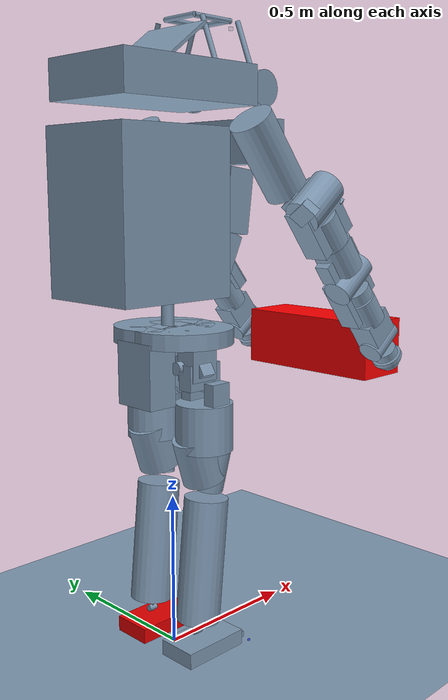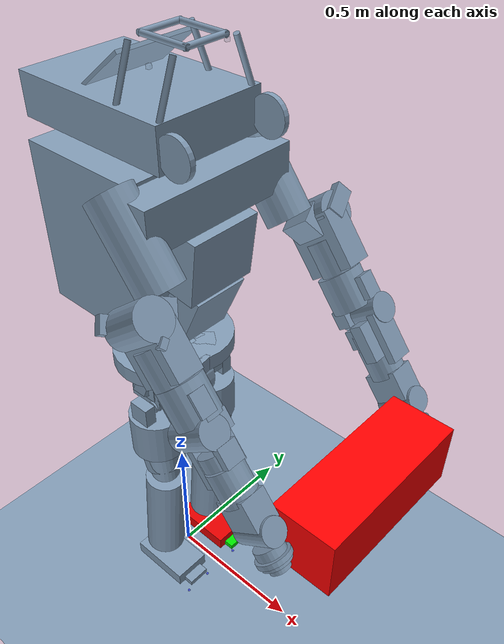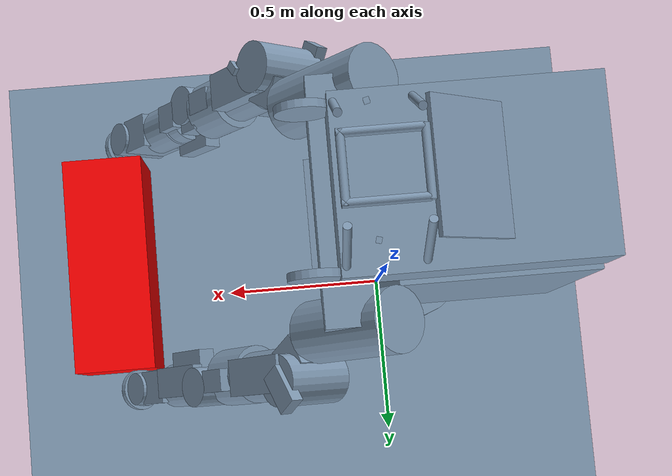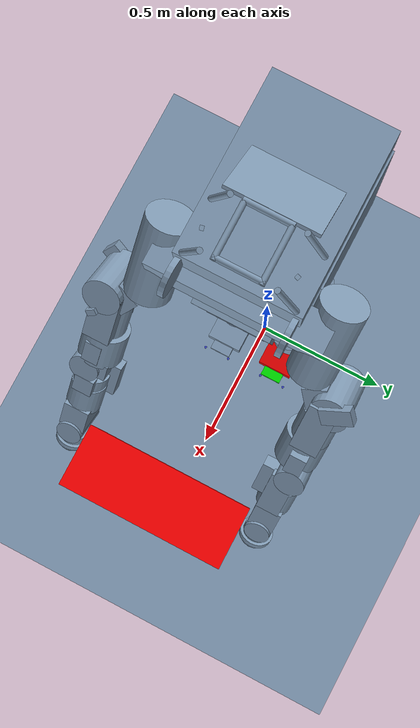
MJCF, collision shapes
<mujoco model="Atlas">
  <compiler coordinate="local" angle="radian"/>
  <option timestep="0.001" integrator="RK4" solver="Newton" iterations="50"/>
  <size njmax="1000" nuserdata="600000"/>
  <visual>
    <map fogstart="2" fogend="4"/>
  </visual>
  <default>
    <default class="/">
      <joint type="hinge" pos="0 0 0" limited="true" armature="0.01" damping="0"/>
      <geom contype="0" conaffinity="1" group="0" rgba="0.5 0.59999999999999998 0.69999999999999996 0.20000000000000001" friction="1 0.10000000000000001 0.10000000000000001" margin="0.001"/>
      <site type="sphere" size="0.0050000000000000001"/>
      <motor ctrllimited="true" ctrlrange="-0.94999999999999996 0.94999999999999996"/>
      <default class="viz">
        <geom type="mesh" contype="0" conaffinity="0" group="1" rgba="0.59999999999999998 0.59999999999999998 0.69999999999999996 1"/>
      </default>
      <default class="ground">
        <geom type="mesh" contype="0" conaffinity="0" group="2" rgba="0.5 0.59999999999999998 0.69999999999999996 1"/>
      </default>
    </default>
  </default>
  <asset>
    <mesh name="pelvis" class="/" file="pelvis-5f9678148bf878cbf40b1b0634df740cc1d6a4bb.stl"/>
    <mesh name="ltorso" class="/" file="ltorso-2367c17720f90b2056e16418954efe300793b26b.stl"/>
    <mesh name="mtorso" class="/" file="mtorso-86c815a02087f294f3ac3eba6776548a54aef9e0.stl"/>
    <mesh name="utorso" class="/" file="utorso-1db5a9392452b46f428cdb81b148020f20e70023.stl"/>
    <mesh name="r_clav" class="/" file="r_clav-a01ba4107edb3eb079c054fa1404a711dda4e919.stl"/>
    <mesh name="r_scap" class="/" file="r_scap-98ad3774b4ba85864a138c77eb0930e559a80ef2.stl"/>
    <mesh name="r_uarm" class="/" file="r_uarm-dc181b79e87e264a3c390287429238d6f9d54f6d.stl"/>
    <mesh name="r_larm" class="/" file="r_larm-b69c61a76084eb7d6ccd145204017043053099be.stl"/>
    <mesh name="r_farm" class="/" file="r_farm-c98051186eda0f3c83a409898f82b4a7ece23153.stl"/>
    <mesh name="r_hand" class="/" file="r_hand-c9674ebcb3fc6d9f7e10be3cdf8905e8a1e597e7.stl"/>
    <mesh name="l_uglut" class="/" file="l_uglut-d5b34759587c29028eb76cd2d07dfec6605078e5.stl"/>
    <mesh name="l_lglut" class="/" file="l_lglut-490210c9e73fa2e4d8cf96b92d170d712dedbd59.stl"/>
    <mesh name="l_uleg" class="/" file="l_uleg-10864b479919b2657634b3262465bee9de5fc57f.stl"/>
    <mesh name="l_lleg" class="/" file="l_lleg-443b5527d6a6233434f379e3d1fd72ba54238e53.stl"/>
    <mesh name="l_talus" class="/" file="l_talus-b99aa12bda94a37326d3379e26da05b84f76fb3f.stl"/>
    <mesh name="l_foot" class="/" file="l_foot-c04a60cf2d067f5a62a12d139db7dddd028134af.stl"/>
    <mesh name="r_uglut" class="/" file="r_uglut-524a6d980386139b5592d0871e762dd87583c5ce.stl"/>
    <mesh name="r_lglut" class="/" file="r_lglut-35e2b1fd1b2a0b474434c7c8915b64f4b2eed62f.stl"/>
    <mesh name="r_uleg" class="/" file="r_uleg-a0e24653034c791dcc8c308dde62a47165aab08d.stl"/>
    <mesh name="r_lleg" class="/" file="r_lleg-3d60b9efb9c50b2a4066c67d30479ffd6656535f.stl"/>
    <mesh name="r_talus" class="/" file="r_talus-eaed3652f60a9594873cb9746b82f7ef312b5d42.stl"/>
    <mesh name="r_foot" class="/" file="r_foot-3119f8fce4f6232ab0546ddbc38dd423e105679d.stl"/>
    <texture name="groundplane" type="2d" builtin="checker" rgb1="0.40000000000000002 0.40000000000000002 0.40000000000000002" rgb2="0.59999999999999998 0.59999999999999998 0.59999999999999998" width="1000" height="1000"/>
    <material name="MatGnd" class="/" texture="groundplane" texrepeat="100 100" specular="1" shininess="1" reflectance="0.5"/>
  </asset>
  <worldbody>
    <geom name="ground" class="ground" type="plane" contype="1" conaffinity="1" size="50 50 1" material="MatGnd" friction="1 0.10000000000000001 0.10000000000000001" pos="0 0 0"/>
    <light name="//unnamed_light_0" class="/" directional="true" pos="0 0 1.3" dir="-0 0 -1.3" cutoff="100" exponent="1" diffuse="1 1 1" specular="0.10000000000000001 0.10000000000000001 0.10000000000000001"/>
    <body name="pelvis" pos="0 0 0.93999999999999995">
      <inertial pos="0.0111 0 0.027099999999999999" quat="0.69858399999999998 0.71391400000000005 0.042483699999999999 -0.022409200000000001" mass="9.5090000000000003" diaginertia="0.124488 0.116646 0.095766599999999993"/>
      <camera name="track" class="/" mode="trackcom" pos="0 -4 0" xyaxes="1 0 0 0 0 1"/>
      <geom name="//unnamed_geom_1" class="viz" mesh="pelvis"/>
      <geom name="//unnamed_geom_2" class="/" type="cylinder" size="0.11 0.029999999999999999" pos="0.045999999999999999 0 0.01" quat="0.70710700000000004 0.70710700000000004 0 0"/>
      <geom name="//unnamed_geom_3" class="/" type="cylinder" size="0.11 0.029999999999999999" pos="-0.029999999999999999 0 0.01" quat="0.70710700000000004 0.70710700000000004 0 0"/>
      <geom name="//unnamed_geom_4" class="/" type="cylinder" size="0.16 0.025000000000000001" pos="0.01 0.042000000000000003 0.089999999999999997"/>
      <geom name="//unnamed_geom_5" class="/" type="cylinder" size="0.16 0.025000000000000001" pos="0.01 -0.042000000000000003 0.089999999999999997"/>
      <geom name="//unnamed_geom_6" class="/" type="box" size="0.050000000000000003 0.074999999999999997 0.10000000000000001" pos="-0.10000000000000001 0 -0.02"/>
      <joint name="pelvis_tx" class="/" type="slide" pos="0 0 0" axis="1 0 0" limited="false" stiffness="0" range="-500 500" ref="0" armature="0" damping="0"/>
      <joint name="pelvis_tz" class="/" type="slide" pos="0 0 0" axis="0 1 0" limited="false" stiffness="0" range="-300 300" ref="0" armature="0" damping="0"/>
      <joint name="pelvis_ty" class="/" type="slide" pos="0 0 0" axis="0 0 1" limited="false" stiffness="0" range="-100 200" ref="0" armature="0" damping="0"/>
      <joint name="pelvis_tilt" class="/" type="hinge" pos="0 0 0" axis="0 -1 0" limited="false" stiffness="0" range="-1.5708 1.5708" ref="0" armature="0" damping="0"/>
      <joint name="pelvis_list" class="/" type="hinge" pos="0 0 0" axis="1 0 0" limited="false" stiffness="0" range="-1.5708 1.5708" ref="0" armature="0" damping="0"/>
      <joint name="pelvis_rotation" class="/" type="hinge" pos="0 0 0" axis="0 0 1" limited="false" stiffness="0" range="-1.5708 1.5708" ref="0" armature="0" damping="0"/>
      <body name="ltorso" pos="-0.012500000000000001 0 0">
        <inertial pos="-0.0112984 -3.1536600000000001e-06 0.0746835" quat="0.99707100000000004 0.000128212 0.076484999999999997 -0.00012406" mass="2.27" diaginertia="0.0039620000000000002 0.0034169399999999998 0.0016921200000000001"/>
        <joint name="back_bkz" class="/" axis="0 0 1" range="-0.66322499999999995 0.66322499999999995"/>
        <geom name="//unnamed_geom_7" class="viz" mesh="ltorso"/>
        <body name="mtorso" pos="0 0 0.16200000000000001">
          <inertial pos="-0.0081626600000000004 -0.013124500000000001 0.0305974" quat="0.108378 0.49314000000000002 0.74633499999999997 0.43364799999999998" mass="0.79900000000000004" diaginertia="0.00053624300000000005 0.00048737800000000001 0.000358057"/>
          <joint name="back_bky" class="/" axis="0 1 0" range="-0.219388 0.53878300000000001"/>
          <geom name="//unnamed_geom_8" class="viz" mesh="mtorso"/>
          <geom name="//unnamed_geom_9" class="/" type="cylinder" size="0.02 0.074999999999999997" pos="0 0 -0.02"/>
          <body name="utorso" pos="0 0 0.050000000000000003">
            <inertial pos="-0.062199999999999998 0.0023 0.31569999999999998" quat="0.45060099999999997 -0.034127699999999997 -0.043951799999999999 0.89098999999999995" mass="84.409000000000006" diaginertia="1.62425 1.5672999999999999 0.55244300000000002"/>
            <joint name="back_bkx" class="/" axis="1 0 0" range="-0.52359900000000004 0.52359900000000004"/>
            <geom name="//unnamed_geom_10" class="viz" mesh="utorso"/>
            <geom name="//unnamed_geom_11" class="/" type="box" size="0.20000000000000001 0.17499999999999999 0.25" pos="-0.10199999999999999 0 0.25"/>
            <geom name="//unnamed_geom_12" class="/" type="box" size="0.065000000000000002 0.25 0.050000000000000003" pos="0.20000000000000001 0 0.46000000000000002" quat="0.70714100000000002 0 0.70707299999999995 0"/>
            <geom name="//unnamed_geom_13" class="/" type="box" size="0.10000000000000001 0.115 0.050000000000000003" pos="0.20000000000000001 0 0.28499999999999998" quat="0.65998299999999999 0 0.75127999999999995 0"/>
            <geom name="//unnamed_geom_14" class="/" type="box" size="0.10000000000000001 0.089999999999999997 0.050000000000000003" pos="0.14999999999999999 0 0.10000000000000001" quat="0.54030199999999995 0 0.84147099999999997 0"/>
            <geom name="//unnamed_geom_15" class="/" type="box" size="0.25315300000000002 0.17086000000000001 0.059999999999999998" pos="-0.035000000000000003 0 0.62649999999999995"/>
            <geom name="//unnamed_geom_16" class="/" type="cylinder" size="0.0080000000000000002 0.065000000000000002" pos="0.20799999999999999 0 0.82150000000000001" quat="0.70714100000000002 0.70707299999999995 0 0"/>
            <geom name="//unnamed_geom_17" class="/" type="cylinder" size="0.0080000000000000002 0.074999999999999997" pos="0.20799999999999999 -0.125 0.745" quat="0.98149600000000004 -0.19148499999999999 0 0"/>
            <geom name="//unnamed_geom_18" class="/" type="cylinder" size="0.0080000000000000002 0.074999999999999997" pos="0.20799999999999999 0.125 0.745" quat="0.98149600000000004 0.19148499999999999 0 0"/>
            <geom name="//unnamed_geom_19" class="/" type="cylinder" size="0.0080000000000000002 0.074999999999999997" pos="0.063 -0.125 0.745" quat="0.98149600000000004 -0.19148499999999999 0 0"/>
            <geom name="//unnamed_geom_20" class="/" type="cylinder" size="0.0080000000000000002 0.074999999999999997" pos="0.063 0.125 0.745" quat="0.98149600000000004 0.19148499999999999 0 0"/>
            <geom name="//unnamed_geom_21" class="/" type="cylinder" size="0.0080000000000000002 0.074999999999999997" pos="0.14000000000000001 0.059999999999999998 0.82150000000000001" quat="0.50004800000000005 0.5 0.49995200000000001 0.5"/>
            <geom name="//unnamed_geom_22" class="/" type="cylinder" size="0.0080000000000000002 0.074999999999999997" pos="0.14000000000000001 -0.059999999999999998 0.82150000000000001" quat="0.50004800000000005 0.5 0.49995200000000001 0.5"/>
            <geom name="//unnamed_geom_23" class="/" type="box" size="0.10000000000000001 0.125 0.0050000000000000001" pos="-0.029000000000000001 0 0.73099999999999998" quat="0.94765100000000002 0 -0.31930900000000001 0"/>
            <geom name="//unnamed_geom_24" class="/" type="cylinder" size="0.0080000000000000002 0.065000000000000002" pos="0.063 0 0.82150000000000001" quat="0.70714100000000002 0.70707299999999995 0 0"/>
            <geom name="//unnamed_geom_25" class="/" type="cylinder" size="0.055 0.0080000000000000002" pos="0.26100000000000001 0.156 0.62150000000000005" quat="0.70714100000000002 0.70707299999999995 0 0"/>
            <geom name="//unnamed_geom_26" class="/" type="cylinder" size="0.055 0.0080000000000000002" pos="0.26100000000000001 -0.156 0.62150000000000005" quat="0.70714100000000002 0.70707299999999995 0 0"/>
            <body name="l_clav" pos="0.1406 0.22559999999999999 0.47760000000000002" quat="0 -0.34999999999999998 0 1">
              <inertial pos="0 0 -0.084000000000000005" quat="0.68458799999999997 0.17702899999999999 -0.17702899999999999 0.68458799999999997" mass="4.4660000000000002" diaginertia="0.011217 0.010999999999999999 0.00178301"/>
              <joint name="l_arm_shz" class="/" axis="0 0 1" range="-1.5708 0.78539800000000004"/>
              <geom name="//unnamed_geom_27" class="viz" mesh="r_clav"/>
              <geom name="//unnamed_geom_28" class="/" type="cylinder" size="0.055500000000000001 0.076249999999999998" pos="0 -0.11 -0.248" quat="0.70710700000000004 0 0.70710700000000004 0"/>
              <geom name="//unnamed_geom_29" class="/" type="cylinder" size="0.067000000000000004 0.13" pos="0.0050000000000000001 -0.014999999999999999 -0.080000000000000002"/>
              <geom name="//unnamed_geom_30" class="/" type="box" size="0.050000000000000003 0.035000000000000003 0.035999999999999997" pos="0.0040000000000000001 -0.064000000000000001 -0.247" quat="0.86532399999999998 0.50121300000000002 0 0"/>
              <body name="l_scap" pos="0 -0.11 -0.245" axisangle="1 0 0 1.5708">
                <inertial pos="0 0 0" quat="0.5 0.5 0.5 0.5" mass="3.899" diaginertia="0.0058300000000000001 0.0058300000000000001 0.0031900000000000001"/>
                <joint name="l_arm_shx" class="/" axis="-1 0 0" range="-1.5708 1.5708"/>
                <geom name="//unnamed_geom_31" class="viz" mesh="r_scap"/>
                <geom name="//unnamed_geom_32" class="/" type="cylinder" size="0.057000000000000002 0.052499999999999998" pos="-0.0050000000000000001 -0.115 -0.014" quat="0.70710700000000004 0.70710700000000004 0 0"/>
                <geom name="//unnamed_geom_33" class="/" type="box" size="0.080000000000000002 0.085000000000000006 0.040000000000000001" pos="-0.0050000000000000001 -0.074999999999999997 -0.014999999999999999"/>
                <geom name="//unnamed_geom_34" class="/" type="box" size="0.01 0.014500000000000001 0.0089999999999999993" pos="0.075999999999999998 -0.061499999999999999 0.012800000000000001" quat="0.43117699999999998 0.90226799999999996 0 0"/>
                <geom name="//unnamed_geom_35" class="/" type="box" size="0.014 0.044999999999999998 0.025000000000000001" pos="-0.074999999999999997 0.014999999999999999 0.019" quat="0.877583 0.47942600000000002 0 0"/>
                <body name="l_uarm" pos="0 -0.187 -0.016">
                  <inertial pos="0 0.065000000000000002 0" quat="0.70710700000000004 0.70710700000000004 0 0" mass="4.3860000000000001" diaginertia="0.0065599999999999999 0.0065599999999999999 0.0035799999999999998"/>
                  <joint name="l_arm_ely" class="/" axis="0 -1 0" range="0 3.1415899999999999"/>
                  <geom name="//unnamed_geom_36" class="viz" mesh="r_uarm"/>
                  <geom name="//unnamed_geom_37" class="/" type="cylinder" size="0.065000000000000002 0.055" pos="0 -0.035000000000000003 -0.0050000000000000001" quat="0.70710499999999998 0.70710799999999996 0 0"/>
                  <geom name="//unnamed_geom_38" class="/" type="box" size="0.025000000000000001 0.035000000000000003 0.074999999999999997" pos="-0.01 -0.042999999999999997 0.002" quat="0.70710700000000004 0 0.70710700000000004 0"/>
                  <body name="l_larm" pos="0 -0.11899999999999999 0.0091999999999999998">
                    <inertial pos="0 0 0" quat="0.5 0.5 0.5 0.5" mass="3.2480000000000002" diaginertia="0.0044600000000000004 0.0044600000000000004 0.00265"/>
                    <joint name="l_arm_elx" class="/" axis="-1 0 0" range="0 2.3561899999999998"/>
                    <geom name="//unnamed_geom_39" class="viz" mesh="r_larm"/>
                    <geom name="//unnamed_geom_40" class="/" type="cylinder" size="0.050999999999999997 0.02" pos="0 -0.074999999999999997 -0.01" quat="0.70710700000000004 -0.70710700000000004 0 0"/>
                    <geom name="//unnamed_geom_41" class="/" type="cylinder" size="0.044999999999999998 0.073499999999999996" pos="-0.012 0 0.0025000000000000001" quat="0.70710700000000004 0 0.70710700000000004 0"/>
                    <geom name="//unnamed_geom_42" class="/" type="box" size="0.012500000000000001 0.077499999999999999 0.035000000000000003" pos="-0.070000000000000007 -0.076999999999999999 -0.014999999999999999"/>
                    <geom name="//unnamed_geom_43" class="/" type="box" size="0.012500000000000001 0.029999999999999999 0.029999999999999999" pos="0.050000000000000003 -0.067000000000000004 -0.0089999999999999993"/>
                    <geom name="//unnamed_geom_44" class="/" type="box" size="0.02 0.057500000000000002 0.025000000000000001" pos="-0.032000000000000001 -0.070999999999999994 -0.059999999999999998"/>
                    <geom name="//unnamed_geom_45" class="/" type="box" size="0.022499999999999999 0.0275 0.0115" pos="0.029999999999999999 0.01 -0.050000000000000003"/>
                    <body name="l_ufarm" pos="0 -0.29954999999999998 -0.0092099999999999994" quat="0 0 1 0">
                      <inertial pos="0.00014999999999999999 0.082960000000000006 0.00036999999999999999" quat="0.70710700000000004 0.70710700000000004 0 0" mass="2.4798" diaginertia="0.012730999999999999 0.011948 0.0028570000000000002"/>
                      <joint name="l_arm_wry" class="/" axis="0 -1 0" range="-3.0110000000000001 3.0110000000000001"/>
                      <geom name="//unnamed_geom_46" class="viz" mesh="r_farm"/>
                      <geom name="//unnamed_geom_47" class="/" type="cylinder" size="0.052999999999999999 0.050000000000000003" pos="0 0.14999999999999999 0" quat="0.70738800000000002 0.70682500000000004 0 0"/>
                      <geom name="//unnamed_geom_48" class="/" type="box" size="0.040000000000000001 0.044999999999999998 0.055" pos="-0.001 0.070000000000000007 0" quat="0.70710700000000004 0 0.70710700000000004 0"/>
                      <geom name="//unnamed_geom_49" class="/" type="cylinder" size="0.040000000000000001 0.0625" pos="0 0.0050000000000000001 0" quat="0.70738800000000002 0 0.70682500000000004 0"/>
                      <body name="l_lfarm" pos="0 0 0">
                        <inertial pos="0.00017000000000000001 -0.025149999999999999 0.0016299999999999999" quat="0.5 0.5 -0.5 0.5" mass="0.64800000000000002" diaginertia="0.000825 0.00076400000000000003 0.00042900000000000002"/>
                        <joint name="l_arm_wrx" class="/" axis="1 0 0" range="-1.7627999999999999 1.7627999999999999"/>
                        <geom name="//unnamed_geom_50" class="viz" mesh="r_hand"/>
                        <geom name="//unnamed_geom_51" class="/" type="cylinder" size="0.031 0.01" pos="0 -0.104 0" quat="0.70710700000000004 0.70710700000000004 0 0"/>
                        <geom name="//unnamed_geom_52" class="/" type="cylinder" size="0.044999999999999998 0.0074999999999999997" pos="0 -0.086999999999999994 0" quat="0.70710700000000004 0.70710700000000004 0 0"/>
                        <geom name="//unnamed_geom_53" class="/" type="cylinder" size="0.051999999999999998 0.0074999999999999997" pos="0 -0.074999999999999997 0" quat="0.70710700000000004 0.70710700000000004 0 0"/>
                        <geom name="//unnamed_geom_54" class="/" type="cylinder" size="0.042999999999999997 0.0135" pos="0 -0.051999999999999998 0" quat="0.70710700000000004 0.70710700000000004 0 0"/>
                        <body name="l_hand" pos="0 0 0" quat="0 0 1 0">
                          <inertial pos="0.00016000000000000001 -0.081589999999999996 2.0000000000000002e-05" quat="0.70710700000000004 0 0 0.70710700000000004" mass="0.58389999999999997" diaginertia="0.00047699999999999999 0.000388 0.000379"/>
                          <joint name="l_arm_wry2" class="/" axis="0 1 0" range="-2.9670999999999998 2.9670999999999998"/>
                        </body>
                      </body>
                    </body>
                  </body>
                </body>
              </body>
            </body>
            <body name="r_clav" pos="0.1406 -0.22559999999999999 0.47760000000000002" quat="1 0 -0.34999999999999998 0">
              <inertial pos="0 0 -0.084000000000000005" quat="0.68458799999999997 0.17702899999999999 -0.17702899999999999 0.68458799999999997" mass="4.4660000000000002" diaginertia="0.011217 0.010999999999999999 0.00178301"/>
              <joint name="r_arm_shz" class="/" axis="0 0 1" range="-0.78539800000000004 1.5708"/>
              <geom name="//unnamed_geom_55" class="viz" mesh="r_clav"/>
              <geom name="//unnamed_geom_56" class="/" type="cylinder" size="0.055500000000000001 0.076249999999999998" pos="0 -0.11 -0.248" quat="0.70710700000000004 0 0.70710700000000004 0"/>
              <geom name="//unnamed_geom_57" class="/" type="cylinder" size="0.067000000000000004 0.13" pos="0.0050000000000000001 -0.014999999999999999 -0.080000000000000002"/>
              <geom name="//unnamed_geom_58" class="/" type="box" size="0.050000000000000003 0.035000000000000003 0.035999999999999997" pos="0.0040000000000000001 -0.064000000000000001 -0.247" quat="0.86532399999999998 0.50121300000000002 0 0"/>
              <body name="r_scap" pos="0 -0.11 -0.245" axisangle="1 0 0 1.5708">
                <inertial pos="0 0 0" quat="0.5 0.5 0.5 0.5" mass="3.899" diaginertia="0.0058300000000000001 0.0058300000000000001 0.0031900000000000001"/>
                <joint name="r_arm_shx" class="/" axis="1 0 0" range="-1.5708 1.5708"/>
                <geom name="//unnamed_geom_59" class="viz" mesh="r_scap"/>
                <geom name="//unnamed_geom_60" class="/" type="cylinder" size="0.057000000000000002 0.052499999999999998" pos="-0.0050000000000000001 -0.115 -0.014" quat="0.70710700000000004 0.70710700000000004 0 0"/>
                <geom name="//unnamed_geom_61" class="/" type="box" size="0.080000000000000002 0.085000000000000006 0.040000000000000001" pos="-0.0050000000000000001 -0.074999999999999997 -0.014999999999999999"/>
                <geom name="//unnamed_geom_62" class="/" type="box" size="0.01 0.014500000000000001 0.0089999999999999993" pos="0.075999999999999998 -0.061499999999999999 0.012800000000000001" quat="0.43117699999999998 0.90226799999999996 0 0"/>
                <geom name="//unnamed_geom_63" class="/" type="box" size="0.014 0.044999999999999998 0.025000000000000001" pos="-0.074999999999999997 0.014999999999999999 0.019" quat="0.877583 0.47942600000000002 0 0"/>
                <body name="r_uarm" pos="0 -0.187 -0.016">
                  <inertial pos="0 0.065000000000000002 0" quat="0.70710700000000004 0.70710700000000004 0 0" mass="4.3860000000000001" diaginertia="0.0065599999999999999 0.0065599999999999999 0.0035799999999999998"/>
                  <joint name="r_arm_ely" class="/" axis="0 1 0" range="0 3.1415899999999999"/>
                  <geom name="//unnamed_geom_64" class="viz" mesh="r_uarm"/>
                  <geom name="//unnamed_geom_65" class="/" type="cylinder" size="0.065000000000000002 0.055" pos="0 -0.035000000000000003 -0.0050000000000000001" quat="0.70710499999999998 0.70710799999999996 0 0"/>
                  <geom name="//unnamed_geom_66" class="/" type="box" size="0.025000000000000001 0.035000000000000003 0.074999999999999997" pos="-0.01 -0.042999999999999997 0.002" quat="0.70710700000000004 0 0.70710700000000004 0"/>
                  <body name="r_larm" pos="0 -0.11899999999999999 0.0091999999999999998">
                    <inertial pos="0 0 0" quat="0.5 0.5 0.5 0.5" mass="3.2480000000000002" diaginertia="0.0044600000000000004 0.0044600000000000004 0.00265"/>
                    <joint name="r_arm_elx" class="/" axis="1 0 0" range="-2.3561899999999998 0"/>
                    <geom name="//unnamed_geom_67" class="viz" mesh="r_larm"/>
                    <geom name="//unnamed_geom_68" class="/" type="cylinder" size="0.050999999999999997 0.02" pos="0 -0.074999999999999997 -0.01" quat="0.70710700000000004 -0.70710700000000004 0 0"/>
                    <geom name="//unnamed_geom_69" class="/" type="cylinder" size="0.044999999999999998 0.073499999999999996" pos="-0.012 0 0.0025000000000000001" quat="0.70710700000000004 0 0.70710700000000004 0"/>
                    <geom name="//unnamed_geom_70" class="/" type="box" size="0.012500000000000001 0.077499999999999999 0.035000000000000003" pos="-0.070000000000000007 -0.076999999999999999 -0.014999999999999999"/>
                    <geom name="//unnamed_geom_71" class="/" type="box" size="0.012500000000000001 0.029999999999999999 0.029999999999999999" pos="0.050000000000000003 -0.067000000000000004 -0.0089999999999999993"/>
                    <geom name="//unnamed_geom_72" class="/" type="box" size="0.02 0.057500000000000002 0.025000000000000001" pos="-0.032000000000000001 -0.070999999999999994 -0.059999999999999998"/>
                    <geom name="//unnamed_geom_73" class="/" type="box" size="0.022499999999999999 0.0275 0.0115" pos="0.029999999999999999 0.01 -0.050000000000000003"/>
                    <body name="r_ufarm" pos="0 -0.29954999999999998 -0.0092099999999999994">
                      <inertial pos="0.00014999999999999999 0.082960000000000006 0.00036999999999999999" quat="0.70710700000000004 0.70710700000000004 0 0" mass="2.4798" diaginertia="0.012730999999999999 0.011948 0.0028570000000000002"/>
                      <joint name="r_arm_wry" class="/" axis="0 1 0" range="-3.0110000000000001 3.0110000000000001"/>
                      <geom name="//unnamed_geom_74" class="viz" mesh="r_farm"/>
                      <geom name="//unnamed_geom_75" class="/" type="cylinder" size="0.052999999999999999 0.050000000000000003" pos="0 0.14999999999999999 0" quat="0.70738800000000002 0.70682500000000004 0 0"/>
                      <geom name="//unnamed_geom_76" class="/" type="box" size="0.040000000000000001 0.044999999999999998 0.055" pos="-0.001 0.070000000000000007 0" quat="0.70710700000000004 0 0.70710700000000004 0"/>
                      <geom name="//unnamed_geom_77" class="/" type="cylinder" size="0.040000000000000001 0.0625" pos="0 0.0050000000000000001 0" quat="0.70738800000000002 0 0.70682500000000004 0"/>
                      <body name="r_lfarm" pos="0 0 0">
                        <inertial pos="0.00017000000000000001 -0.025149999999999999 0.0016299999999999999" quat="0.5 0.5 -0.5 0.5" mass="0.64800000000000002" diaginertia="0.000825 0.00076400000000000003 0.00042900000000000002"/>
                        <joint name="r_arm_wrx" class="/" axis="1 0 0" range="-1.7627999999999999 1.7627999999999999"/>
                        <geom name="//unnamed_geom_78" class="viz" mesh="r_hand"/>
                        <geom name="//unnamed_geom_79" class="/" type="cylinder" size="0.031 0.01" pos="0 -0.104 0" quat="0.70710700000000004 0.70710700000000004 0 0"/>
                        <geom name="//unnamed_geom_80" class="/" type="cylinder" size="0.044999999999999998 0.0074999999999999997" pos="0 -0.086999999999999994 0" quat="0.70710700000000004 0.70710700000000004 0 0"/>
                        <geom name="//unnamed_geom_81" class="/" type="cylinder" size="0.051999999999999998 0.0074999999999999997" pos="0 -0.074999999999999997 0" quat="0.70710700000000004 0.70710700000000004 0 0"/>
                        <geom name="//unnamed_geom_82" class="/" type="cylinder" size="0.042999999999999997 0.0135" pos="0 -0.051999999999999998 0" quat="0.70710700000000004 0.70710700000000004 0 0"/>
                        <body name="r_hand" pos="0 0 0">
                          <inertial pos="0.00016000000000000001 -0.081589999999999996 2.0000000000000002e-05" quat="0.70710700000000004 0 0 0.70710700000000004" mass="0.58389999999999997" diaginertia="0.00047699999999999999 0.000388 0.000379"/>
                          <joint name="r_arm_wry2" class="/" axis="0 1 0" range="-2.9670999999999998 2.9670999999999998"/>
                        </body>
                      </body>
                    </body>
                  </body>
                </body>
              </body>
            </body>
            <body name="r_situational_awareness_camera_link" pos="0.155 -0.121 0.78500000000000003" quat="0.79335199999999995 0 0 -0.60876300000000005">
              <inertial pos="0 0 0" mass="0.10000000000000001" diaginertia="1.0000000000000001e-05 1.0000000000000001e-05 1.0000000000000001e-05"/>
              <geom name="//unnamed_geom_83" class="/" type="box" contype="0" conaffinity="0" group="1" size="0.0050000000000000001 0.0050000000000000001 0.0050000000000000001" pos="0 0 0"/>
              <body name="r_situational_awareness_camera_optical_frame" pos="0 0 0" quat="0.499998 -0.5 0.50000199999999995 -0.5">
                <inertial pos="0 0 0" quat="0.499998 -0.5 0.50000199999999995 -0.5" mass="0" diaginertia="0 0 0"/>
              </body>
            </body>
            <body name="l_situational_awareness_camera_link" pos="0.155 0.121 0.78500000000000003" quat="0.79335199999999995 0 0 0.60876300000000005">
              <inertial pos="0 0 0" mass="0.10000000000000001" diaginertia="1.0000000000000001e-05 1.0000000000000001e-05 1.0000000000000001e-05"/>
              <geom name="//unnamed_geom_84" class="/" type="box" contype="0" conaffinity="0" group="1" size="0.0050000000000000001 0.0050000000000000001 0.0050000000000000001" pos="0 0 0"/>
              <body name="l_situational_awareness_camera_optical_frame" pos="0 0 0" quat="0.499998 -0.5 0.50000199999999995 -0.5">
                <inertial pos="0 0 0" quat="0.499998 -0.5 0.50000199999999995 -0.5" mass="0" diaginertia="0 0 0"/>
              </body>
            </body>
          </body>
        </body>
      </body>
      <body name="l_uglut" pos="0 0.088999999999999996 0">
        <inertial pos="0.0052926199999999996 -0.0034473199999999998 0.0031304599999999998" quat="0.99912199999999995 -7.7216899999999996e-05 0.041902799999999997 -0.000305187" mass="1.9590000000000001" diaginertia="0.00074510899999999998 0.00068817900000000003 0.00041007100000000002"/>
        <joint name="hip_flexion_l" class="/" axis="0 -1 0" range="-0.78679399999999999 0.78679399999999999" damping="0"/>
        <geom name="//unnamed_geom_85" class="viz" mesh="l_uglut"/>
        <geom name="//unnamed_geom_86" class="/" type="box" size="0.025000000000000001 0.050000000000000003 0.050000000000000003" pos="0.01 0.0050000000000000001 0" quat="0.96569400000000005 0.25968400000000003 0 0"/>
        <geom name="//unnamed_geom_87" class="/" type="cylinder" size="0.019841000000000001 0.040420999999999999" pos="0 0 0"/>
        <body name="l_lglut" pos="0 0 0">
          <inertial pos="0.0133341 0.017048399999999998 -0.031205199999999999" quat="0.35346499999999997 0.600383 0.38860899999999998 0.60298099999999999" mass="0.89800000000000002" diaginertia="0.0013386699999999999 0.000995812 0.00069027499999999996"/>
          <joint name="hip_adduction_l" class="/" axis="-1 0 0" range="-0.52359900000000004 0.52359900000000004" damping="0"/>
          <geom name="//unnamed_geom_88" class="viz" mesh="l_lglut"/>
          <geom name="//unnamed_geom_89" class="/" type="box" size="0.0625 0.025000000000000001 0.040000000000000001" pos="0.014999999999999999 0.025999999999999999 -0.028000000000000001"/>
          <geom name="//unnamed_geom_90" class="/" type="cylinder" size="0.020096900000000001 0.030152999999999999" pos="0.050000000000000003 0.027487999999999999 -0.067000000000000004" quat="0.70710700000000004 0.70710700000000004 0 0"/>
          <geom name="//unnamed_geom_91" class="/" type="cylinder" size="0.02 0.071999999999999995" pos="0.0115 0 0" quat="0.70710700000000004 0 0.70710700000000004 0"/>
          <geom name="//unnamed_geom_92" class="/" type="box" size="0.048750000000000002 0.034500000000000003 0.051499999999999997" pos="0.01 0.02 0.01"/>
          <body name="l_uleg" pos="0.050000000000000003 0.022499999999999999 -0.066000000000000003">
            <inertial pos="0 0 -0.20999999999999999" mass="8.2040000000000006" diaginertia="0.089999999999999997 0.089999999999999997 0.02"/>
            <joint name="hip_rotation_l" class="/" axis="0 0 -1" range="-1.6123400000000001 1.6123400000000001" damping="0"/>
            <geom name="//unnamed_geom_93" class="viz" mesh="l_uleg"/>
            <geom name="//unnamed_geom_94" class="/" type="cylinder" size="0.089999999999999997 0.074999999999999997" pos="-0.019900000000000001 0.0058500000000000002 -0.122"/>
            <geom name="//unnamed_geom_95" class="/" type="cylinder" size="0.070000000000000007 0.074999999999999997" pos="-0.032000000000000001 -0.0050000000000000001 -0.224" quat="0.98877099999999996 0 -0.14943799999999999 0"/>
            <geom name="//unnamed_geom_96" class="/" type="cylinder" size="0.050000000000000003 0.074999999999999997" pos="0.0030000000000000001 0.014999999999999999 -0.254" quat="0.99508300000000005 -0.074771500000000005 0.064771599999999999 0.0048669999999999998"/>
            <geom name="//unnamed_geom_97" class="/" type="box" size="0.035000000000000003 0.019 0.074999999999999997" pos="-0.0070000000000000001 -0.052999999999999999 -0.051999999999999998"/>
            <geom name="//unnamed_geom_98" class="/" type="box" size="0.035000000000000003 0.019 0.070000000000000007" pos="-0.017000000000000001 0.059499999999999997 -0.049000000000000002"/>
            <body name="l_lleg" pos="-0.050000000000000003 0 -0.374">
              <inertial pos="0.001 0 -0.187" quat="0.99975099999999995 0 0.022326599999999999 0" mass="4.5149999999999997" diaginertia="0.077134099999999997 0.075999999999999998 0.0098659400000000001"/>
              <joint name="knee_angle_l" class="/" axis="0 -1 0" range="-2.3563700000000001 0.17399999999999999" damping="0"/>
              <geom name="//unnamed_geom_99" class="viz" mesh="l_lleg"/>
              <geom name="//unnamed_geom_100" class="/" type="cylinder" size="0.070000000000000007 0.20000000000000001" pos="0.02 0.0029499999999999999 -0.182" quat="0.99875000000000003 0 0.049979200000000001 0"/>
              <body name="l_talus" pos="0 0 -0.42199999999999999">
                <inertial pos="0 0 0" quat="0.5 0.5 -0.5 0.5" mass="0.125" diaginertia="1.3010099999999999e-05 1.01674e-05 8.4277500000000008e-06"/>
                <joint name="ankle_angle_l" class="/" axis="0 -1 0" range="-1 1" damping="0"/>
                <geom name="//unnamed_geom_101" class="viz" mesh="l_talus"/>
                <geom name="//unnamed_geom_102" class="/" type="cylinder" size="0.010181000000000001 0.014770999999999999" pos="0 0 0" quat="0.70710700000000004 0 0.70710700000000004 0"/>
                <geom name="//unnamed_geom_103" class="/" type="cylinder" size="0.010348 0.0050295000000000001" pos="0 0 0" quat="0.70710700000000004 0.70710700000000004 0 0"/>
                <body name="l_foot" pos="0 0 0">
                  <inertial pos="0.027 0 -0.067000000000000004" quat="0 0.70710700000000004 0 0.70710700000000004" mass="2.4100000000000001" diaginertia="0.0080000000000000002 0.0070000000000000001 0.002"/>
                  <geom name="//unnamed_geom_104" class="viz" mesh="l_foot"/>
                  <geom name="left_foot_back" class="/" type="box" size="0.1135 0.066943500000000003 0.025000000000000001" rgba="0.90000000000000002 0 0 0.20000000000000001" pos="0.023 0 -0.049119000000000003"/>
                  <geom name="left_foot_front" class="/" type="box" size="0.050000000000000003 0.040000000000000001 0.01" rgba="0 0.90000000000000002 0 0.20000000000000001" pos="0.1225 0 -0.064100000000000004"/>
                  <site name="left_foot_front_left" class="/" type="sphere" rgba="0 0 0.98999999999999999 0.5" size="0.0050000000000000001" pos="0.17749999999999999 0.059999999999999998 -0.080000000000000002"/>
                  <site name="left_foot_front_right" class="/" type="sphere" rgba="0 0 0.98999999999999999 0.5" size="0.0050000000000000001" pos="0.17749999999999999 -0.040000000000000001 -0.080000000000000002"/>
                  <site name="left_foot_back_left" class="/" type="sphere" rgba="0 0 0.98999999999999999 0.5" size="0.0050000000000000001" pos="-0.042500000000000003 0.050000000000000003 -0.080000000000000002"/>
                  <site name="left_foot_back_right" class="/" type="sphere" rgba="0 0 0.98999999999999999 0.5" size="0.0050000000000000001" pos="-0.042500000000000003 -0.050000000000000003 -0.080000000000000002"/>
                </body>
              </body>
            </body>
          </body>
        </body>
      </body>
      <body name="r_uglut" pos="0 -0.088999999999999996 0">
        <inertial pos="0.0052926199999999996 0.0034473199999999998 0.0031304599999999998" quat="0.99912199999999995 7.7216899999999996e-05 0.041902799999999997 0.000305187" mass="1.9590000000000001" diaginertia="0.00074510899999999998 0.00068817900000000003 0.00041007100000000002"/>
        <joint name="hip_flexion_r" class="/" axis="0 -1 0" range="-0.78679399999999999 0.78679399999999999" damping="0"/>
        <geom name="//unnamed_geom_107" class="viz" mesh="r_uglut"/>
        <geom name="//unnamed_geom_108" class="/" type="box" size="0.025000000000000001 0.050000000000000003 0.050000000000000003" pos="0.01 -0.0050000000000000001 0" quat="0.96569400000000005 -0.25968400000000003 0 0"/>
        <geom name="//unnamed_geom_109" class="/" type="cylinder" size="0.019841000000000001 0.040420999999999999" pos="0 0 0"/>
        <body name="r_lglut" pos="0 0 0">
          <inertial pos="0.0133341 -0.017048399999999998 -0.031205199999999999" quat="0.60298099999999999 0.38860899999999998 0.600383 0.35346499999999997" mass="0.89800000000000002" diaginertia="0.0013386699999999999 0.000995812 0.00069027499999999996"/>
          <joint name="hip_adduction_r" class="/" axis="1 0 0" range="-0.52359900000000004 0.52359900000000004" damping="0"/>
          <geom name="//unnamed_geom_110" class="viz" mesh="r_lglut"/>
          <geom name="//unnamed_geom_111" class="/" type="box" size="0.0625 0.025000000000000001 0.040000000000000001" pos="0.014999999999999999 -0.025999999999999999 -0.028000000000000001"/>
          <geom name="//unnamed_geom_112" class="/" type="cylinder" size="0.020096900000000001 0.030152999999999999" pos="0.050000000000000003 -0.027487999999999999 -0.067000000000000004" quat="0.70710700000000004 0.70710700000000004 0 0"/>
          <geom name="//unnamed_geom_113" class="/" type="cylinder" size="0.02 0.070999999999999994" pos="0.010500000000000001 0 0" quat="0.70710700000000004 0 0.70710700000000004 0"/>
          <geom name="//unnamed_geom_114" class="/" type="box" size="0.048750000000000002 0.034500000000000003 0.051499999999999997" pos="0.01 -0.02 0.01"/>
          <body name="r_uleg" pos="0.050000000000000003 -0.022499999999999999 -0.066000000000000003">
            <inertial pos="0 0 -0.20999999999999999" mass="8.2040000000000006" diaginertia="0.089999999999999997 0.089999999999999997 0.02"/>
            <joint name="hip_rotation_r" class="/" axis="0 0 1" range="-1.6123400000000001 1.6123400000000001" damping="0"/>
            <geom name="//unnamed_geom_115" class="viz" mesh="r_uleg"/>
            <geom name="//unnamed_geom_116" class="/" type="cylinder" size="0.089999999999999997 0.074999999999999997" pos="-0.019900000000000001 -0.0058500000000000002 -0.122"/>
            <geom name="//unnamed_geom_117" class="/" type="cylinder" size="0.070000000000000007 0.074999999999999997" pos="-0.032000000000000001 0.0050000000000000001 -0.224" quat="0.98877099999999996 0 -0.14943799999999999 0"/>
            <geom name="//unnamed_geom_118" class="/" type="cylinder" size="0.050000000000000003 0.074999999999999997" pos="0.0030000000000000001 -0.014999999999999999 -0.254" quat="0.99508300000000005 0.074771500000000005 0.064771599999999999 -0.0048669999999999998"/>
            <geom name="//unnamed_geom_119" class="/" type="box" size="0.035000000000000003 0.019 0.074999999999999997" pos="-0.0070000000000000001 0.052999999999999999 -0.051999999999999998"/>
            <geom name="//unnamed_geom_120" class="/" type="box" size="0.035000000000000003 0.019 0.070000000000000007" pos="-0.017000000000000001 -0.059499999999999997 -0.049000000000000002"/>
            <body name="r_lleg" pos="-0.050000000000000003 0 -0.374">
              <inertial pos="0.001 0 -0.187" quat="0.99975099999999995 0 0.022326599999999999 0" mass="4.5149999999999997" diaginertia="0.077134099999999997 0.075999999999999998 0.0098659400000000001"/>
              <joint name="knee_angle_r" class="/" axis="0 -1 0" range="-2.3563700000000001 0.17399999999999999" damping="0"/>
              <geom name="//unnamed_geom_121" class="viz" mesh="r_lleg"/>
              <geom name="//unnamed_geom_122" class="/" type="cylinder" size="0.070000000000000007 0.20000000000000001" pos="0.02 -0.0029499999999999999 -0.182" quat="0.99875000000000003 0 0.049979200000000001 0"/>
              <body name="r_talus" pos="0 0 -0.42199999999999999">
                <inertial pos="0 0 0" quat="0.5 0.5 -0.5 0.5" mass="0.125" diaginertia="1.3010099999999999e-05 1.01674e-05 8.4277500000000008e-06"/>
                <joint name="ankle_angle_r" class="/" axis="0 -1 0" range="-1 1" damping="0"/>
                <geom name="//unnamed_geom_123" class="viz" mesh="r_talus"/>
                <geom name="//unnamed_geom_124" class="/" type="cylinder" size="0.010181000000000001 0.014770999999999999" pos="0 0 0" quat="0.70710700000000004 0 0.70710700000000004 0"/>
                <geom name="//unnamed_geom_125" class="/" type="cylinder" size="0.010348 0.0050295000000000001" pos="0 0 0" quat="0.70710700000000004 0.70710700000000004 0 0"/>
                <body name="r_foot" pos="0 0 0">
                  <inertial pos="0.027 0 -0.067000000000000004" quat="0 0.70710700000000004 0 0.70710700000000004" mass="2.4100000000000001" diaginertia="0.0080000000000000002 0.0070000000000000001 0.002"/>
                  <geom name="//unnamed_geom_126" class="viz" mesh="r_foot"/>
                  <geom name="right_foot_back" class="/" type="box" size="0.1135 0.066943500000000003 0.025000000000000001" pos="0.023 0 -0.049119000000000003"/>
                  <geom name="right_foot_front" class="/" type="box" size="0.050000000000000003 0.040000000000000001 0.01" pos="0.1225 0 -0.064100000000000004"/>
                  <site name="right_foot_front_left" class="/" type="sphere" rgba="0 0 0.98999999999999999 0.5" size="0.0050000000000000001" pos="0.17749999999999999 0.040000000000000001 -0.080000000000000002"/>
                  <site name="right_foot_front_right" class="/" type="sphere" rgba="0 0 0.98999999999999999 0.5" size="0.0050000000000000001" pos="0.17749999999999999 -0.059999999999999998 -0.080000000000000002"/>
                  <site name="right_foot_back_left" class="/" type="sphere" rgba="0 0 0.98999999999999999 0.5" size="0.0050000000000000001" pos="-0.042500000000000003 0.050000000000000003 -0.080000000000000002"/>
                  <site name="right_foot_back_right" class="/" type="sphere" rgba="0 0 0.98999999999999999 0.5" size="0.0050000000000000001" pos="-0.042500000000000003 -0.050000000000000003 -0.080000000000000002"/>
                </body>
              </body>
            </body>
          </body>
        </body>
      </body>
      <body name="weight">
        <geom name="//unnamed_geom_129" class="/" type="box" size="0.10000000000000001 0.27000000000000002 0.10000000000000001" rgba="1 0 0 1" mass="0.10000000000000001" pos="0.75 0 -0.02"/>
      </body>
    </body>
  </worldbody>
  <actuator>
    <motor name="hip_flexion_l_actuator" class="/" gear="275" joint="hip_flexion_l"/>
    <motor name="hip_adduction_l_actuator" class="/" gear="530" joint="hip_adduction_l"/>
    <motor name="hip_rotation_l_actuator" class="/" gear="840" joint="hip_rotation_l"/>
    <motor name="knee_angle_l_actuator" class="/" gear="890" joint="knee_angle_l"/>
    <motor name="ankle_angle_l_actuator" class="/" gear="740" joint="ankle_angle_l"/>
    <motor name="hip_flexion_r_actuator" class="/" gear="275" joint="hip_flexion_r"/>
    <motor name="hip_adduction_r_actuator" class="/" gear="530" joint="hip_adduction_r"/>
    <motor name="hip_rotation_r_actuator" class="/" gear="840" joint="hip_rotation_r"/>
    <motor name="knee_angle_r_actuator" class="/" gear="890" joint="knee_angle_r"/>
    <motor name="ankle_angle_r_actuator" class="/" gear="740" joint="ankle_angle_r"/>
  </actuator>
</mujoco>
